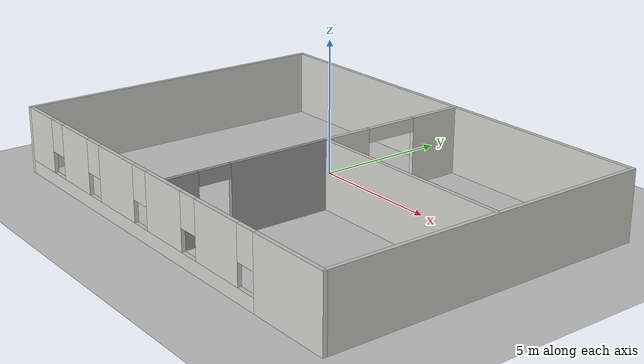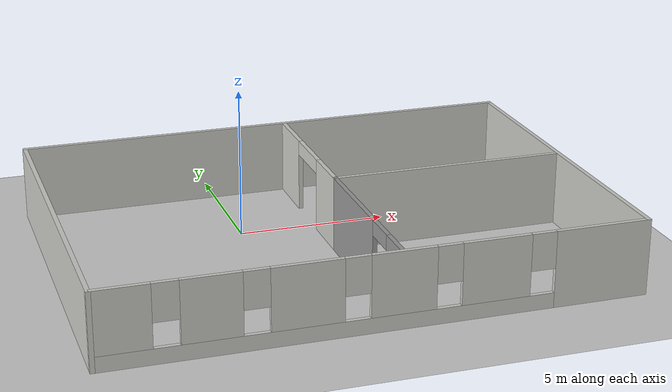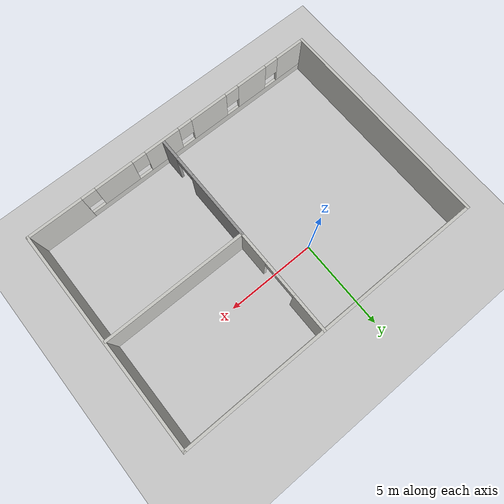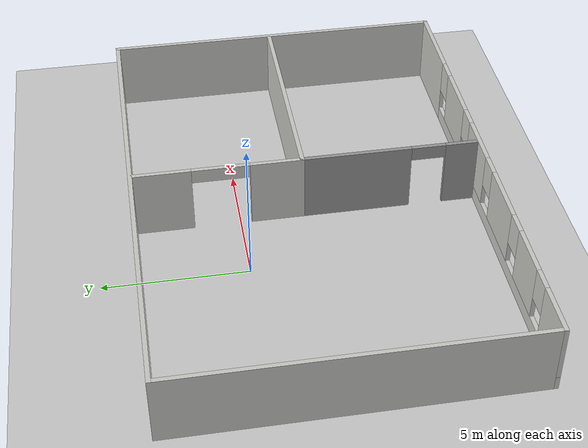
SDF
<sdf version="1.6">
 <world name="default">
  <light name="sun" type="directional">
   <pose>0 0 10 0 -0 0</pose>
   <diffuse>0.8 0.8 0.8 1</diffuse>
   <specular>0.2 0.2 0.2 1</specular>
   <attenuation>
    <range>1000</range>
    <constant>0.9</constant>
    <linear>0.01</linear>
    <quadratic>0.001</quadratic>
   </attenuation>
   <direction>-0.5 0.1 -0.9</direction>
  </light>
  <model name="ground_plane">
   <static>1</static>
   <link name="link">
    <collision name="collision">
     <geometry><plane><normal>0 0 1</normal><size>100 100</size></plane></geometry>
     <surface>
      <contact><collide_bitmask>65535</collide_bitmask></contact>
      <friction><ode><mu>100</mu><mu2>50</mu2></ode></friction>
     </surface>
    </collision>
    <visual name="visual">
     <cast_shadows>0</cast_shadows>
     <geometry><plane><normal>0 0 1</normal><size>100 100</size></plane></geometry>
     <material>
      <script><uri>file://media/materials/scripts/gazebo.material</uri><name>Gazebo/Grey</name></script>
     </material>
    </visual>
   </link>
  </model>
  <gravity>0 0 -9.8</gravity>
  <magnetic_field>6e-06 2.3e-05 -4.2e-05</magnetic_field>
  <atmosphere type="adiabatic"/>
  <physics name="default_physics" default="0" type="ode">
   <max_step_size>0.001</max_step_size>
   <real_time_factor>1</real_time_factor>
   <real_time_update_rate>1000</real_time_update_rate>
  </physics>
  <scene><ambient>0.4 0.4 0.4 1</ambient><background>0.7 0.7 0.7 1</background><shadows>1</shadows></scene>
  <audio><device>default</device></audio>
  <spherical_coordinates>
   <surface_model>EARTH_WGS84</surface_model>
   <latitude_deg>0</latitude_deg>
   <longitude_deg>0</longitude_deg>
   <elevation>0</elevation>
   <heading_deg>0</heading_deg>
  </spherical_coordinates>
  <model name="at_test_env">
   <pose>1.97884 -2.37517 0 0 -0 0</pose>
   <link name="Wall_10">
    <collision name="Wall_10_Collision">
     <geometry><box><size>17.25 0.15 2.5</size></box></geometry>
     <pose>0 0 1.25 0 -0 0</pose>
    </collision>
    <visual name="Wall_10_Visual">
     <pose>0 0 1.25 0 -0 0</pose>
     <geometry><box><size>17.25 0.15 2.5</size></box></geometry>
     <material>
      <script><uri>file://media/materials/scripts/gazebo.material</uri><name>Gazebo/CeilingTiled</name></script>
      <ambient>1 1 1 1</ambient>
     </material>
     <meta><layer>0</layer></meta>
    </visual>
    <pose>-0 6.05 0 0 -0 0</pose>
   </link>
   <link name="Wall_11">
    <collision name="Wall_11_Collision">
     <geometry><box><size>12.25 0.15 2.5</size></box></geometry>
     <pose>0 0 1.25 0 -0 0</pose>
    </collision>
    <visual name="Wall_11_Visual">
     <pose>0 0 1.25 0 -0 0</pose>
     <geometry><box><size>12.25 0.15 2.5</size></box></geometry>
     <material>
      <script><uri>file://media/materials/scripts/gazebo.material</uri><name>Gazebo/CeilingTiled</name></script>
      <ambient>1 1 1 1</ambient>
     </material>
     <meta><layer>0</layer></meta>
    </visual>
    <pose>8.55 -0 0 0 -0 -1.5708</pose>
   </link>
   <link name="Wall_12">
    <pose>-0 -6.05 0 0 -0 3.14159</pose>
    <visual name="Wall_12_Visual_0">
     <pose>-7.05912 0 1.25 0 -0 0</pose>
     <geometry><box><size>3.13176 0.15 2.5</size></box></geometry>
     <material>
      <script><uri>file://media/materials/scripts/gazebo.material</uri><name>Gazebo/CeilingTiled</name></script>
      <ambient>1 1 1 1</ambient>
     </material>
     <meta><layer>0</layer></meta>
    </visual>
    <collision name="Wall_12_Collision_0">
     <geometry><box><size>3.13176 0.15 2.5</size></box></geometry>
     <pose>-7.05912 0 1.25 0 -0 0</pose>
    </collision>
    <visual name="Wall_12_Visual_1">
     <pose>1.56588 0 0.25 0 -0 0</pose>
     <geometry><box><size>14.1182 0.15 0.5</size></box></geometry>
     <material>
      <script><uri>file://media/materials/scripts/gazebo.material</uri><name>Gazebo/CeilingTiled</name></script>
      <ambient>1 1 1 1</ambient>
     </material>
     <meta><layer>0</layer></meta>
    </visual>
    <collision name="Wall_12_Collision_1">
     <geometry><box><size>14.1182 0.15 0.5</size></box></geometry>
     <pose>1.56588 0 0.25 0 -0 0</pose>
    </collision>
    <visual name="Wall_12_Visual_2">
     <pose>-3.59432 0 1.5 0 -0 0</pose>
     <geometry><box><size>2.19784 0.15 2</size></box></geometry>
     <material>
      <script><uri>file://media/materials/scripts/gazebo.material</uri><name>Gazebo/CeilingTiled</name></script>
      <ambient>1 1 1 1</ambient>
     </material>
     <meta><layer>0</layer></meta>
    </visual>
    <collision name="Wall_12_Collision_2">
     <geometry><box><size>2.19784 0.15 2</size></box></geometry>
     <pose>-3.59432 0 1.5 0 -0 0</pose>
    </collision>
    <visual name="Wall_12_Visual_3">
     <pose>-0.672954 0 1.5 0 -0 0</pose>
     <geometry><box><size>2.04489 0.15 2</size></box></geometry>
     <material>
      <script><uri>file://media/materials/scripts/gazebo.material</uri><name>Gazebo/CeilingTiled</name></script>
      <ambient>1 1 1 1</ambient>
     </material>
     <meta><layer>0</layer></meta>
    </visual>
    <collision name="Wall_12_Collision_3">
     <geometry><box><size>2.04489 0.15 2</size></box></geometry>
     <pose>-0.672954 0 1.5 0 -0 0</pose>
    </collision>
    <visual name="Wall_12_Visual_4">
     <pose>2.26371 0 1.5 0 -0 0</pose>
     <geometry><box><size>2.22843 0.15 2</size></box></geometry>
     <material>
      <script><uri>file://media/materials/scripts/gazebo.material</uri><name>Gazebo/CeilingTiled</name></script>
      <ambient>1 1 1 1</ambient>
     </material>
     <meta><layer>0</layer></meta>
    </visual>
    <collision name="Wall_12_Collision_4">
     <geometry><box><size>2.22843 0.15 2</size></box></geometry>
     <pose>2.26371 0 1.5 0 -0 0</pose>
    </collision>
    <visual name="Wall_12_Visual_5">
     <pose>5.0933 0 1.5 0 -0 0</pose>
     <geometry><box><size>1.83076 0.15 2</size></box></geometry>
     <material>
      <script><uri>file://media/materials/scripts/gazebo.material</uri><name>Gazebo/CeilingTiled</name></script>
      <ambient>1 1 1 1</ambient>
     </material>
     <meta><layer>0</layer></meta>
    </visual>
    <collision name="Wall_12_Collision_5">
     <geometry><box><size>1.83076 0.15 2</size></box></geometry>
     <pose>5.0933 0 1.5 0 -0 0</pose>
    </collision>
    <visual name="Wall_12_Visual_6">
     <pose>7.71684 0 1.5 0 -0 0</pose>
     <geometry><box><size>1.81632 0.15 2</size></box></geometry>
     <material>
      <script><uri>file://media/materials/scripts/gazebo.material</uri><name>Gazebo/CeilingTiled</name></script>
      <ambient>1 1 1 1</ambient>
     </material>
     <meta><layer>0</layer></meta>
    </visual>
    <collision name="Wall_12_Collision_6">
     <geometry><box><size>1.81632 0.15 2</size></box></geometry>
     <pose>7.71684 0 1.5 0 -0 0</pose>
    </collision>
    <visual name="Wall_12_Visual_7">
     <pose>-5.09324 0 1.9 0 -0 0</pose>
     <geometry><box><size>0.8 0.15 1.2</size></box></geometry>
     <material>
      <script><uri>file://media/materials/scripts/gazebo.material</uri><name>Gazebo/CeilingTiled</name></script>
      <ambient>1 1 1 1</ambient>
     </material>
     <meta><layer>0</layer></meta>
    </visual>
    <collision name="Wall_12_Collision_7">
     <geometry><box><size>0.8 0.15 1.2</size></box></geometry>
     <pose>-5.09324 0 1.9 0 -0 0</pose>
    </collision>
    <visual name="Wall_12_Visual_8">
     <pose>-2.0954 0 1.9 0 -0 0</pose>
     <geometry><box><size>0.8 0.15 1.2</size></box></geometry>
     <material>
      <script><uri>file://media/materials/scripts/gazebo.material</uri><name>Gazebo/CeilingTiled</name></script>
      <ambient>1 1 1 1</ambient>
     </material>
     <meta><layer>0</layer></meta>
    </visual>
    <collision name="Wall_12_Collision_8">
     <geometry><box><size>0.8 0.15 1.2</size></box></geometry>
     <pose>-2.0954 0 1.9 0 -0 0</pose>
    </collision>
    <visual name="Wall_12_Visual_9">
     <pose>0.749492 0 1.9 0 -0 0</pose>
     <geometry><box><size>0.8 0.15 1.2</size></box></geometry>
     <material>
      <script><uri>file://media/materials/scripts/gazebo.material</uri><name>Gazebo/CeilingTiled</name></script>
      <ambient>1 1 1 1</ambient>
     </material>
     <meta><layer>0</layer></meta>
    </visual>
    <collision name="Wall_12_Collision_9">
     <geometry><box><size>0.8 0.15 1.2</size></box></geometry>
     <pose>0.749492 0 1.9 0 -0 0</pose>
    </collision>
    <visual name="Wall_12_Visual_10">
     <pose>3.77792 0 1.9 0 -0 0</pose>
     <geometry><box><size>0.8 0.15 1.2</size></box></geometry>
     <material>
      <script><uri>file://media/materials/scripts/gazebo.material</uri><name>Gazebo/CeilingTiled</name></script>
      <ambient>1 1 1 1</ambient>
     </material>
     <meta><layer>0</layer></meta>
    </visual>
    <collision name="Wall_12_Collision_10">
     <geometry><box><size>0.8 0.15 1.2</size></box></geometry>
     <pose>3.77792 0 1.9 0 -0 0</pose>
    </collision>
    <visual name="Wall_12_Visual_11">
     <pose>6.40868 0 1.9 0 -0 0</pose>
     <geometry><box><size>0.8 0.15 1.2</size></box></geometry>
     <material>
      <script><uri>file://media/materials/scripts/gazebo.material</uri><name>Gazebo/CeilingTiled</name></script>
      <ambient>1 1 1 1</ambient>
     </material>
     <meta><layer>0</layer></meta>
    </visual>
    <collision name="Wall_12_Collision_11">
     <geometry><box><size>0.8 0.15 1.2</size></box></geometry>
     <pose>6.40868 0 1.9 0 -0 0</pose>
    </collision>
   </link>
   <link name="Wall_13">
    <collision name="Wall_13_Collision">
     <geometry><box><size>12.25 0.15 2.5</size></box></geometry>
     <pose>0 0 1.25 0 -0 0</pose>
    </collision>
    <visual name="Wall_13_Visual">
     <pose>0 0 1.25 0 -0 0</pose>
     <geometry><box><size>12.25 0.15 2.5</size></box></geometry>
     <material>
      <script><uri>file://media/materials/scripts/gazebo.material</uri><name>Gazebo/CeilingTiled</name></script>
      <ambient>1 1 1 1</ambient>
     </material>
     <meta><layer>0</layer></meta>
    </visual>
    <pose>-8.55 -0 0 0 -0 1.5708</pose>
   </link>
   <link name="Wall_16">
    <pose>0.627069 3.125 0 0 -0 -1.5708</pose>
    <visual name="Wall_16_Visual_0">
     <pose>-1.93299 0 1.25 0 -0 0</pose>
     <geometry><box><size>2.13402 0.15 2.5</size></box></geometry>
     <material>
      <script><uri>file://media/materials/scripts/gazebo.material</uri><name>Gazebo/CeilingTiled</name></script>
      <ambient>1 1 1 1</ambient>
     </material>
     <meta><layer>0</layer></meta>
    </visual>
    <collision name="Wall_16_Collision_0">
     <geometry><box><size>2.13402 0.15 2.5</size></box></geometry>
     <pose>-1.93299 0 1.25 0 -0 0</pose>
    </collision>
    <visual name="Wall_16_Visual_1">
     <pose>2.06701 0 1.25 0 -0 0</pose>
     <geometry><box><size>1.86598 0.15 2.5</size></box></geometry>
     <material>
      <script><uri>file://media/materials/scripts/gazebo.material</uri><name>Gazebo/CeilingTiled</name></script>
      <ambient>1 1 1 1</ambient>
     </material>
     <meta><layer>0</layer></meta>
    </visual>
    <collision name="Wall_16_Collision_1">
     <geometry><box><size>1.86598 0.15 2.5</size></box></geometry>
     <pose>2.06701 0 1.25 0 -0 0</pose>
    </collision>
    <visual name="Wall_16_Visual_2">
     <pose>0.134023 0 2.25 0 -0 0</pose>
     <geometry><box><size>2 0.15 0.5</size></box></geometry>
     <material>
      <script><uri>file://media/materials/scripts/gazebo.material</uri><name>Gazebo/CeilingTiled</name></script>
      <ambient>1 1 1 1</ambient>
     </material>
     <meta><layer>0</layer></meta>
    </visual>
    <collision name="Wall_16_Collision_2">
     <geometry><box><size>2 0.15 0.5</size></box></geometry>
     <pose>0.134023 0 2.25 0 -0 0</pose>
    </collision>
   </link>
   <link name="Wall_17">
    <collision name="Wall_17_Collision">
     <geometry><box><size>8 0.15 2.5</size></box></geometry>
     <pose>0 0 1.25 0 -0 0</pose>
    </collision>
    <visual name="Wall_17_Visual">
     <pose>0 0 1.25 0 -0 0</pose>
     <geometry><box><size>8 0.15 2.5</size></box></geometry>
     <material>
      <script><uri>file://media/materials/scripts/gazebo.material</uri><name>Gazebo/CeilingTiled</name></script>
      <ambient>1 1 1 1</ambient>
     </material>
     <meta><layer>0</layer></meta>
    </visual>
    <pose>4.55207 0.2 0 0 -0 0</pose>
   </link>
   <link name="Wall_19">
    <pose>0.627069 -2.85 0 0 -0 -1.5708</pose>
    <visual name="Wall_19_Visual_0">
     <pose>-1.17334 0 1.25 0 -0 0</pose>
     <geometry><box><size>3.90332 0.15 2.5</size></box></geometry>
     <material>
      <script><uri>file://media/materials/scripts/gazebo.material</uri><name>Gazebo/Grey</name></script>
      <ambient>1 1 1 1</ambient>
     </material>
     <meta><layer>0</layer></meta>
    </visual>
    <collision name="Wall_19_Collision_0">
     <geometry><box><size>3.90332 0.15 2.5</size></box></geometry>
     <pose>-1.17334 0 1.25 0 -0 0</pose>
    </collision>
    <visual name="Wall_19_Visual_1">
     <pose>2.55166 0 1.25 0 -0 0</pose>
     <geometry><box><size>1.14668 0.15 2.5</size></box></geometry>
     <material>
      <script><uri>file://media/materials/scripts/gazebo.material</uri><name>Gazebo/Grey</name></script>
      <ambient>1 1 1 1</ambient>
     </material>
     <meta><layer>0</layer></meta>
    </visual>
    <collision name="Wall_19_Collision_1">
     <geometry><box><size>1.14668 0.15 2.5</size></box></geometry>
     <pose>2.55166 0 1.25 0 -0 0</pose>
    </collision>
    <visual name="Wall_19_Visual_2">
     <pose>1.37832 0 2.25 0 -0 0</pose>
     <geometry><box><size>1.2 0.15 0.5</size></box></geometry>
     <material>
      <script><uri>file://media/materials/scripts/gazebo.material</uri><name>Gazebo/Grey</name></script>
      <ambient>1 1 1 1</ambient>
     </material>
     <meta><layer>0</layer></meta>
    </visual>
    <collision name="Wall_19_Collision_2">
     <geometry><box><size>1.2 0.15 0.5</size></box></geometry>
     <pose>1.37832 0 2.25 0 -0 0</pose>
    </collision>
   </link>
   <static>1</static>
  </model>
 </world>
</sdf>
